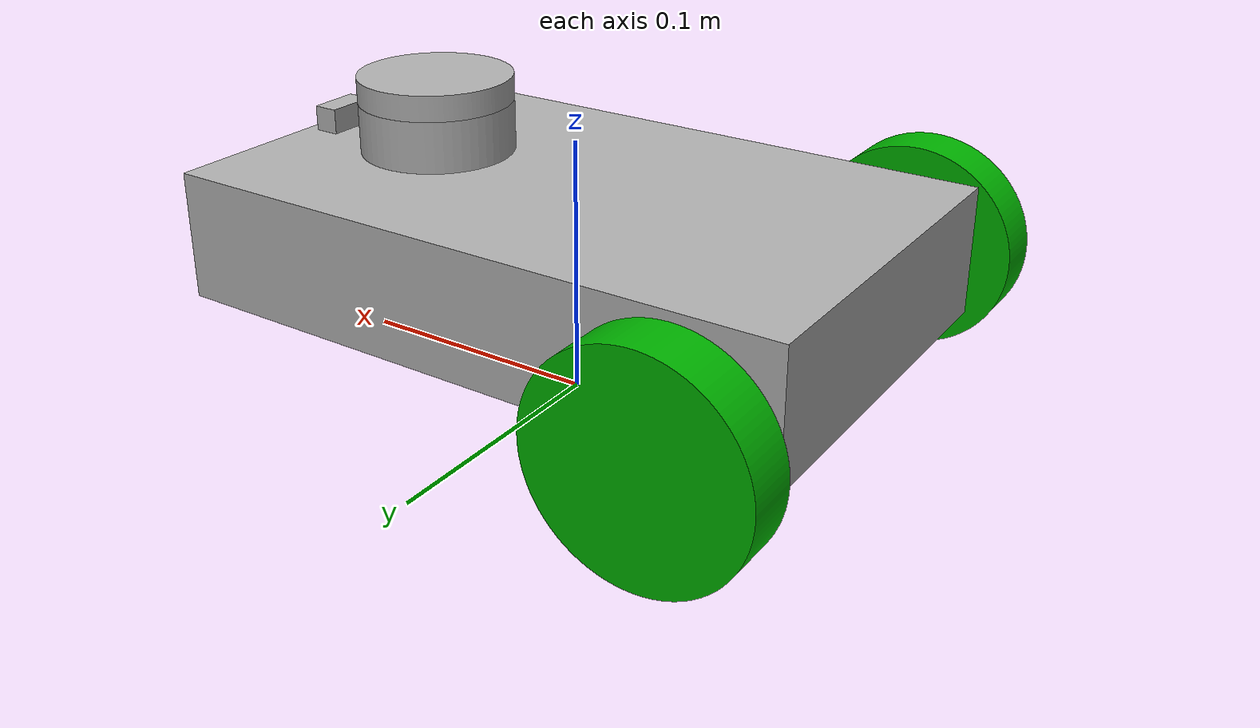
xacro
<?xml version="1.0" ?>
<robot name="my_bot1" xmlns:xacro="http://www.ros.org/wiki/xacro">

<xacro:include filename="$(find my_bot1_description)/urdf/materials.xacro" />
<xacro:include filename="$(find my_bot1_description)/urdf/my_bot1.trans" />
<xacro:include filename="$(find my_bot1_description)/urdf/my_bot1.gazebo" />

<link name="base_footprint" />

<link name="base_link">
  <inertial>
    <origin xyz="0.0019913052979473353 1.8711830484880868e-17 0.05086764557581086" rpy="0 0 0"/>
    <mass value="3.26207372322279"/>
    <inertia ixx="0.031664" iyy="0.083155" izz="0.107459" ixy="0.0" iyz="0.0" ixz="-0.000845"/>
  </inertial>
  <visual>
    <origin xyz="0 0 0" rpy="0 0 0"/>
    <geometry>
      <mesh filename="file://$(find my_bot1_description)/meshes/base_link.stl" scale="0.001 0.001 0.001"/>
    </geometry>
    <material name="silver"/>
  </visual>
  <collision>
    <origin xyz="0 0 0" rpy="0 0 0"/>
    <geometry>
      <mesh filename="file://$(find my_bot1_description)/meshes/base_link.stl" scale="0.001 0.001 0.001"/>
    </geometry>
  </collision>
</link>

<link name="lidar_1">
  <visual>
    <origin xyz="-0.065 -0.0 -0.095" rpy="0 0 0"/>
    <geometry>
      <mesh filename="file://$(find my_bot1_description)/meshes/lidar_1.stl" scale="0.001 0.001 0.001"/>
    </geometry>
    <material name="silver"/>
  </visual>
  <collision>
    <origin xyz="-0.065 -0.0 -0.095" rpy="0 0 0"/>
    <geometry>
      <mesh filename="file://$(find my_bot1_description)/meshes/lidar_1.stl" scale="0.001 0.001 0.001"/>
    </geometry>
  </collision>
</link>

<link name="camera_1">
  <visual>
    <origin xyz="-0.125 -0.0 -0.075" rpy="0 0 0"/>
    <geometry>
      <mesh filename="file://$(find my_bot1_description)/meshes/camera_1.stl" scale="0.001 0.001 0.001"/>
    </geometry>
    <material name="silver"/>
  </visual>
  <collision>
    <origin xyz="-0.125 -0.0 -0.075" rpy="0 0 0"/>
    <geometry>
      <mesh filename="file://$(find my_bot1_description)/meshes/camera_1.stl" scale="0.001 0.001 0.001"/>
    </geometry>
  </collision>
</link>

<link name="right_wheel_1">
  <inertial>
    <origin xyz="3.2335245592207684e-15 -0.010000000000000009 -1.0408340855860843e-15" rpy="0 0 0"/>
    <mass value="2.789168074581756"/>
    <inertia ixx="0.000342" iyy="0.000631" izz="0.000342" ixy="0.0" iyz="0.0" ixz="0.0"/>
  </inertial>
  <visual>
    <origin xyz="0.095 0.09 -0.04" rpy="0 0 0"/>
    <geometry>
      <mesh filename="file://$(find my_bot1_description)/meshes/right_wheel_1.stl" scale="0.001 0.001 0.001"/>
    </geometry>
    <material name="green"/>
  </visual>
  <collision>
    <origin xyz="0.095 0.09 -0.04" rpy="0 0 0"/>
    <geometry>
      <mesh filename="file://$(find my_bot1_description)/meshes/right_wheel_1.stl" scale="0.001 0.001 0.001"/>
    </geometry>
  </collision>
</link>

<link name="caster_wheel_1">
  <inertial>
    <origin xyz="5.551115123125783e-17 1.7640362090410834e-17 -0.003992604884490872" rpy="0 0 0"/>
    <mass value="0.027666894768023"/>
    <inertia ixx="1e-06" iyy="1e-06" izz="2e-06" ixy="0.0" iyz="0.0" ixz="0.0"/>
  </inertial>
  <visual>
    <origin xyz="-0.095 -0.0 -0.01" rpy="0 0 0"/>
    <geometry>
      <mesh filename="file://$(find my_bot1_description)/meshes/caster_wheel_1.stl" scale="0.001 0.001 0.001"/>
    </geometry>
    <material name="silver"/>
  </visual>
  <collision>
    <origin xyz="-0.095 -0.0 -0.01" rpy="0 0 0"/>
    <geometry>
      <mesh filename="file://$(find my_bot1_description)/meshes/caster_wheel_1.stl" scale="0.001 0.001 0.001"/>
    </geometry>
  </collision>
</link>

<link name="left_wheel_1">
  <inertial>
    <origin xyz="4.163336342344337e-17 0.009999999999999981 -6.938893903907228e-18" rpy="0 0 0"/>
    <mass value="2.789168074581756"/>
    <inertia ixx="0.000342" iyy="0.000631" izz="0.000342" ixy="0.0" iyz="-0.0" ixz="0.0"/>
  </inertial>
  <visual>
    <origin xyz="0.095 -0.09 -0.04" rpy="0 0 0"/>
    <geometry>
      <mesh filename="file://$(find my_bot1_description)/meshes/left_wheel_1.stl" scale="0.001 0.001 0.001"/>
    </geometry>
    <material name="green"/>
  </visual>
  <collision>
    <origin xyz="0.095 -0.09 -0.04" rpy="0 0 0"/>
    <geometry>
      <mesh filename="file://$(find my_bot1_description)/meshes/left_wheel_1.stl" scale="0.001 0.001 0.001"/>
    </geometry>
  </collision>
</link>

<joint name="base_joint" type="fixed">
  <origin xyz="0.0 0.0 0.01" rpy="0 0 0"/>
  <parent link="base_footprint"/>
  <child link="base_link"/>
</joint>

<joint name="lidar_joint" type="fixed">
  <origin xyz="0.065 0.0 0.095" rpy="0 0 0"/>
  <parent link="base_link"/>
  <child link="lidar_1"/>
  <axis xyz="0 1 0" rpy="0 0 0" />
</joint>

<joint name="camera_joint" type="fixed">
  <origin xyz="0.125 0.0 0.075" rpy="0 0 0"/>
  <parent link="base_link"/>
  <child link="camera_1"/>
</joint>

<joint name="right_wheel_joint" type="continuous">
  <origin xyz="-0.095 -0.09 0.04" rpy="0 0 0"/>
  <parent link="base_link"/>
  <child link="right_wheel_1"/>
  <axis xyz="0.0 1.0 0.0"/>
</joint>

<joint name="caster_wheel_joint" type="fixed">
  <origin xyz="0.095 0.0 0.01" rpy="0 0 0"/>
  <parent link="base_link"/>
  <child link="caster_wheel_1"/>
</joint>

<joint name="left_wheel_joint" type="continuous">
  <origin xyz="-0.095 0.09 0.04" rpy="0 0 0"/>
  <parent link="base_link"/>
  <child link="left_wheel_1"/>
  <axis xyz="0.0 1.0 0.0"/>
</joint>

</robot>

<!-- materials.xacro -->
<robot xmlns:xacro="http://www.ros.org/wiki/xacro" >

<material name="silver">
  <color rgba="0.700 0.700 0.700 1.000" />
</material>

<material name="green">
  <color rgba="0.0 0.700 0.0 1.000" />
</material>

</robot>
